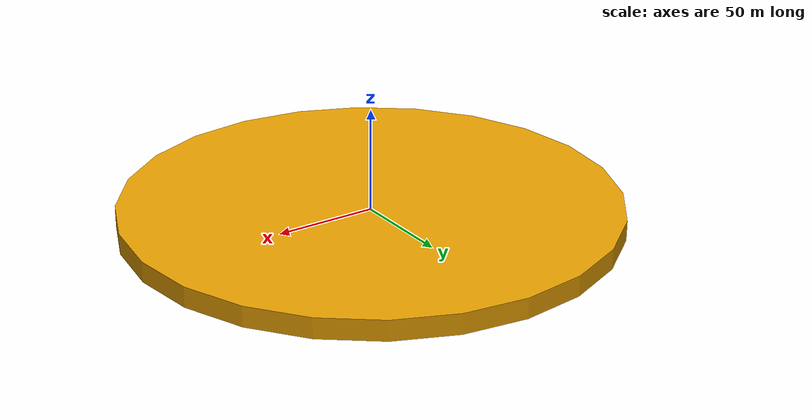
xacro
<?xml version="1.0"?>
<robot xmlns:xacro="http://ros.org/wiki/xacro" name="crab">
<!--build base link-->

  <link name="base_link">
    <visual>
      <geometry>
        <cylinder length="10" radius="120"/>
      </geometry>
      <origin xyz="0 0 0"/>
    </visual>
  </link>

  <xacro:property name="pi" value="3.1415926535897931" />
  <!--xacro:property name="pi" value="3.1415926535897931" /-->

</robot>
